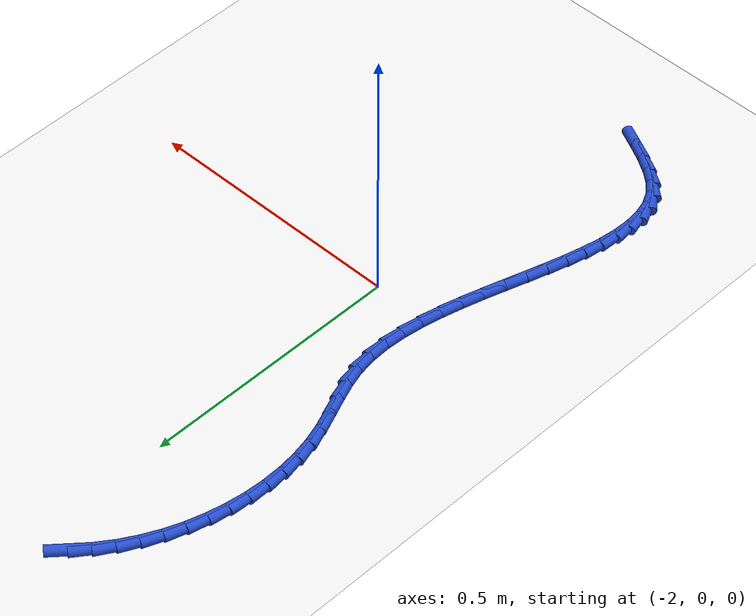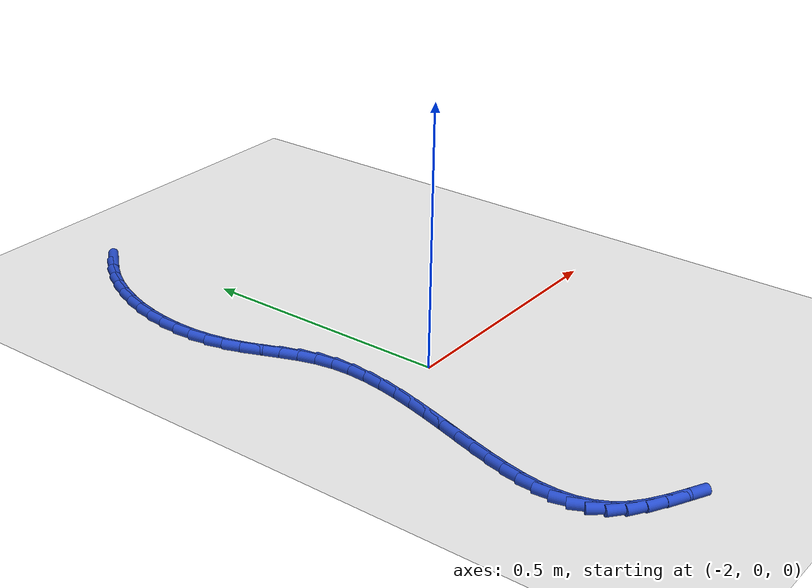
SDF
<sdf version="1.6">
 <world name="default">
  <model name="ground_plane">
   <static>1</static>
   <link name="link">
    <collision name="collision">
     <geometry><plane><normal>0 0 1</normal><size>100 100</size></plane></geometry>
     <surface><friction><ode><mu>100</mu><mu2>50</mu2></ode></friction></surface>
    </collision>
    <visual name="visual">
     <cast_shadows>0</cast_shadows>
     <geometry><plane><normal>0 0 1</normal><size>100 100</size></plane></geometry>
     <material>
      <script><uri>file://media/materials/scripts/gazebo.material</uri><name>Gazebo/WhiteGlow</name></script>
     </material>
    </visual>
   </link>
  </model>
  <model name="line">
   <link name="link_101">
    <pose>-2.060882034483153 0.7489533475358238 0.01 0 1.57 0.8401064688445521</pose>
    <collision name="collision">
     <geometry><cylinder><radius>0.01</radius><length>0.08</length></cylinder></geometry>
    </collision>
    <visual name="visual">
     <material>
      <script><name>Gazebo/Blue</name><uri>file://media/materials/scripts/gazebo.material</uri></script>
     </material>
     <geometry><cylinder><radius>0.01</radius><length>0.08</length></cylinder></geometry>
    </visual>
   </link>
   <link name="link_102">
    <pose>-2.085448786605733 0.7215400124167127 0.01 0 1.57 0.9346124691766111</pose>
    <collision name="collision">
     <geometry><cylinder><radius>0.01</radius><length>0.08</length></cylinder></geometry>
    </collision>
    <visual name="visual">
     <material>
      <script><name>Gazebo/Blue</name><uri>file://media/materials/scripts/gazebo.material</uri></script>
     </material>
     <geometry><cylinder><radius>0.01</radius><length>0.08</length></cylinder></geometry>
    </visual>
   </link>
   <link name="link_103">
    <pose>-2.1074805424237057 0.6917121069957796 0.01 0 1.57 1.0239100167349378</pose>
    <collision name="collision">
     <geometry><cylinder><radius>0.01</radius><length>0.08</length></cylinder></geometry>
    </collision>
    <visual name="visual">
     <material>
      <script><name>Gazebo/Blue</name><uri>file://media/materials/scripts/gazebo.material</uri></script>
     </material>
     <geometry><cylinder><radius>0.01</radius><length>0.08</length></cylinder></geometry>
    </visual>
   </link>
   <link name="link_104">
    <pose>-2.126908085387129 0.6598024324865919 0.01 0 1.57 1.108937853082907</pose>
    <collision name="collision">
     <geometry><cylinder><radius>0.01</radius><length>0.08</length></cylinder></geometry>
    </collision>
    <visual name="visual">
     <material>
      <script><name>Gazebo/Blue</name><uri>file://media/materials/scripts/gazebo.material</uri></script>
     </material>
     <geometry><cylinder><radius>0.01</radius><length>0.08</length></cylinder></geometry>
    </visual>
   </link>
   <link name="link_105">
    <pose>-2.1436621989460565 0.6261437901027175 0.01 0 1.57 1.1907436440343862</pose>
    <collision name="collision">
     <geometry><cylinder><radius>0.01</radius><length>0.08</length></cylinder></geometry>
    </collision>
    <visual name="visual">
     <material>
      <script><name>Gazebo/Blue</name><uri>file://media/materials/scripts/gazebo.material</uri></script>
     </material>
     <geometry><cylinder><radius>0.01</radius><length>0.08</length></cylinder></geometry>
    </visual>
   </link>
   <link name="link_106">
    <pose>-2.1576736665505463 0.5910689810577237 0.01 0 1.57 1.270428582061972</pose>
    <collision name="collision">
     <geometry><cylinder><radius>0.01</radius><length>0.08</length></cylinder></geometry>
    </collision>
    <visual name="visual">
     <material>
      <script><name>Gazebo/Blue</name><uri>file://media/materials/scripts/gazebo.material</uri></script>
     </material>
     <geometry><cylinder><radius>0.01</radius><length>0.08</length></cylinder></geometry>
    </visual>
   </link>
   <link name="link_107">
    <pose>-2.1688732716506536 0.5549108065651779 0.01 0 1.57 1.3491193345732564</pose>
    <collision name="collision">
     <geometry><cylinder><radius>0.01</radius><length>0.08</length></cylinder></geometry>
    </collision>
    <visual name="visual">
     <material>
      <script><name>Gazebo/Blue</name><uri>file://media/materials/scripts/gazebo.material</uri></script>
     </material>
     <geometry><cylinder><radius>0.01</radius><length>0.08</length></cylinder></geometry>
    </visual>
   </link>
   <link name="link_108">
    <pose>-2.177191797696436 0.5180020678386473 0.01 0 1.57 1.427957559290346</pose>
    <collision name="collision">
     <geometry><cylinder><radius>0.01</radius><length>0.08</length></cylinder></geometry>
    </collision>
    <visual name="visual">
     <material>
      <script><name>Gazebo/Blue</name><uri>file://media/materials/scripts/gazebo.material</uri></script>
     </material>
     <geometry><cylinder><radius>0.01</radius><length>0.08</length></cylinder></geometry>
    </visual>
   </link>
   <link name="link_109">
    <pose>-2.1825600281379485 0.48067556609170015 0.01 0 1.57 1.5080979027979537</pose>
    <collision name="collision">
     <geometry><cylinder><radius>0.01</radius><length>0.08</length></cylinder></geometry>
    </collision>
    <visual name="visual">
     <material>
      <script><name>Gazebo/Blue</name><uri>file://media/materials/scripts/gazebo.material</uri></script>
     </material>
     <geometry><cylinder><radius>0.01</radius><length>0.08</length></cylinder></geometry>
    </visual>
   </link>
   <link name="link_110">
    <pose>-2.184908746425249 0.4432641025379036 0.01 0 1.57 -1.5508867336588632</pose>
    <collision name="collision">
     <geometry><cylinder><radius>0.01</radius><length>0.08</length></cylinder></geometry>
    </collision>
    <visual name="visual">
     <material>
      <script><name>Gazebo/Blue</name><uri>file://media/materials/scripts/gazebo.material</uri></script>
     </material>
     <geometry><cylinder><radius>0.01</radius><length>0.08</length></cylinder></geometry>
    </visual>
   </link>
   <link name="link_111">
    <pose>-2.1841687360083912 0.4061004783908249 0.01 0 1.57 -1.4646457714623244</pose>
    <collision name="collision">
     <geometry><cylinder><radius>0.01</radius><length>0.08</length></cylinder></geometry>
    </collision>
    <visual name="visual">
     <material>
      <script><name>Gazebo/Blue</name><uri>file://media/materials/scripts/gazebo.material</uri></script>
     </material>
     <geometry><cylinder><radius>0.01</radius><length>0.08</length></cylinder></geometry>
    </visual>
   </link>
   <link name="link_112">
    <pose>-2.180270780337433 0.3695174948640311 0.01 0 1.57 -1.373637752157715</pose>
    <collision name="collision">
     <geometry><cylinder><radius>0.01</radius><length>0.08</length></cylinder></geometry>
    </collision>
    <visual name="visual">
     <material>
      <script><name>Gazebo/Blue</name><uri>file://media/materials/scripts/gazebo.material</uri></script>
     </material>
     <geometry><cylinder><radius>0.01</radius><length>0.08</length></cylinder></geometry>
    </visual>
   </link>
   <link name="link_113">
    <pose>-2.1731456628624306 0.33384795317109084 0.01 0 1.57 -1.2778956271705915</pose>
    <collision name="collision">
     <geometry><cylinder><radius>0.01</radius><length>0.08</length></cylinder></geometry>
    </collision>
    <visual name="visual">
     <material>
      <script><name>Gazebo/Blue</name><uri>file://media/materials/scripts/gazebo.material</uri></script>
     </material>
     <geometry><cylinder><radius>0.01</radius><length>0.08</length></cylinder></geometry>
    </visual>
   </link>
   <link name="link_114">
    <pose>-2.1627587866573217 0.299405800946533 0.01 0 1.57 -1.2031492354582862</pose>
    <collision name="collision">
     <geometry><cylinder><radius>0.01</radius><length>0.08</length></cylinder></geometry>
    </collision>
    <visual name="visual">
     <material>
      <script><name>Gazebo/Blue</name><uri>file://media/materials/scripts/gazebo.material</uri></script>
     </material>
     <geometry><cylinder><radius>0.01</radius><length>0.08</length></cylinder></geometry>
    </visual>
   </link>
   <link name="link_115">
    <pose>-2.149911422794083 0.2660497785869207 0.01 0 1.57 -1.177336893738993</pose>
    <collision name="collision">
     <geometry><cylinder><radius>0.01</radius><length>0.08</length></cylinder></geometry>
    </collision>
    <visual name="visual">
     <material>
      <script><name>Gazebo/Blue</name><uri>file://media/materials/scripts/gazebo.material</uri></script>
     </material>
     <geometry><cylinder><radius>0.01</radius><length>0.08</length></cylinder></geometry>
    </visual>
   </link>
   <link name="link_116">
    <pose>-2.1362633305998373 0.2331711004340271 0.01 0 1.57 -1.2024226208152087</pose>
    <collision name="collision">
     <geometry><cylinder><radius>0.01</radius><length>0.08</length></cylinder></geometry>
    </collision>
    <visual name="visual">
     <material>
      <script><name>Gazebo/Blue</name><uri>file://media/materials/scripts/gazebo.material</uri></script>
     </material>
     <geometry><cylinder><radius>0.01</radius><length>0.08</length></cylinder></geometry>
    </visual>
   </link>
   <link name="link_117">
    <pose>-2.1235134140882277 0.2001396629365162 0.01 0 1.57 -1.2791076641124994</pose>
    <collision name="collision">
     <geometry><cylinder><radius>0.01</radius><length>0.08</length></cylinder></geometry>
    </collision>
    <visual name="visual">
     <material>
      <script><name>Gazebo/Blue</name><uri>file://media/materials/scripts/gazebo.material</uri></script>
     </material>
     <geometry><cylinder><radius>0.01</radius><length>0.08</length></cylinder></geometry>
    </visual>
   </link>
   <link name="link_118">
    <pose>-2.113360577272903 0.16632536254305308 0.01 0 1.57 -1.4018801986129743</pose>
    <collision name="collision">
     <geometry><cylinder><radius>0.01</radius><length>0.08</length></cylinder></geometry>
    </collision>
    <visual name="visual">
     <material>
      <script><name>Gazebo/Blue</name><uri>file://media/materials/scripts/gazebo.material</uri></script>
     </material>
     <geometry><cylinder><radius>0.01</radius><length>0.08</length></cylinder></geometry>
    </visual>
   </link>
   <link name="link_119">
    <pose>-2.107362187566585 0.13115269458104403 0.01 0 1.57 -1.5255070291305557</pose>
    <collision name="collision">
     <geometry><cylinder><radius>0.01</radius><length>0.08</length></cylinder></geometry>
    </collision>
    <visual name="visual">
     <material>
      <script><name>Gazebo/Blue</name><uri>file://media/materials/scripts/gazebo.material</uri></script>
     </material>
     <geometry><cylinder><radius>0.01</radius><length>0.08</length></cylinder></geometry>
    </visual>
   </link>
   <link name="link_120">
    <pose>-2.105704479544537 0.09457507986461537 0.01 0 1.57 1.515211361605297</pose>
    <collision name="collision">
     <geometry><cylinder><radius>0.01</radius><length>0.08</length></cylinder></geometry>
    </collision>
    <visual name="visual">
     <material>
      <script><name>Gazebo/Blue</name><uri>file://media/materials/scripts/gazebo.material</uri></script>
     </material>
     <geometry><cylinder><radius>0.01</radius><length>0.08</length></cylinder></geometry>
    </visual>
   </link>
   <link name="link_121">
    <pose>-2.1078039865229905 0.056842857640547625 0.01 0 1.57 1.4353559988704196</pose>
    <collision name="collision">
     <geometry><cylinder><radius>0.01</radius><length>0.08</length></cylinder></geometry>
    </collision>
    <visual name="visual">
     <material>
      <script><name>Gazebo/Blue</name><uri>file://media/materials/scripts/gazebo.material</uri></script>
     </material>
     <geometry><cylinder><radius>0.01</radius><length>0.08</length></cylinder></geometry>
    </visual>
   </link>
   <link name="link_122">
    <pose>-2.1130687113936957 0.01820965783526803 0.01 0 1.57 1.37384543437967</pose>
    <collision name="collision">
     <geometry><cylinder><radius>0.01</radius><length>0.08</length></cylinder></geometry>
    </collision>
    <visual name="visual">
     <material>
      <script><name>Gazebo/Blue</name><uri>file://media/materials/scripts/gazebo.material</uri></script>
     </material>
     <geometry><cylinder><radius>0.01</radius><length>0.08</length></cylinder></geometry>
    </visual>
   </link>
   <link name="link_123">
    <pose>-2.120906657048403 -0.021070889624795978 0.01 0 1.57 1.3281770039443923</pose>
    <collision name="collision">
     <geometry><cylinder><radius>0.01</radius><length>0.08</length></cylinder></geometry>
    </collision>
    <visual name="visual">
     <material>
      <script><name>Gazebo/Blue</name><uri>file://media/materials/scripts/gazebo.material</uri></script>
     </material>
     <geometry><cylinder><radius>0.01</radius><length>0.08</length></cylinder></geometry>
    </visual>
   </link>
   <link name="link_124">
    <pose>-2.130725826378863 -0.06074515481321709 0.01 0 1.57 1.2963819608395453</pose>
    <collision name="collision">
     <geometry><cylinder><radius>0.01</radius><length>0.08</length></cylinder></geometry>
    </collision>
    <visual name="visual">
     <material>
      <script><name>Gazebo/Blue</name><uri>file://media/materials/scripts/gazebo.material</uri></script>
     </material>
     <geometry><cylinder><radius>0.01</radius><length>0.08</length></cylinder></geometry>
    </visual>
   </link>
   <link name="link_125">
    <pose>-2.141934222276826 -0.10055950780356894 0.01 0 1.57 1.2771368431752328</pose>
    <collision name="collision">
     <geometry><cylinder><radius>0.01</radius><length>0.08</length></cylinder></geometry>
    </collision>
    <visual name="visual">
     <material>
      <script><name>Gazebo/Blue</name><uri>file://media/materials/scripts/gazebo.material</uri></script>
     </material>
     <geometry><cylinder><radius>0.01</radius><length>0.08</length></cylinder></geometry>
    </visual>
   </link>
   <link name="link_126">
    <pose>-2.1539398476340406 -0.1402603186694221 0.01 0 1.57 1.2697864341884642</pose>
    <collision name="collision">
     <geometry><cylinder><radius>0.01</radius><length>0.08</length></cylinder></geometry>
    </collision>
    <visual name="visual">
     <material>
      <script><name>Gazebo/Blue</name><uri>file://media/materials/scripts/gazebo.material</uri></script>
     </material>
     <geometry><cylinder><radius>0.01</radius><length>0.08</length></cylinder></geometry>
    </visual>
   </link>
   <link name="link_127">
    <pose>-2.166150705342258 -0.1795939574843502 0.01 0 1.57 1.274364618847439</pose>
    <collision name="collision">
     <geometry><cylinder><radius>0.01</radius><length>0.08</length></cylinder></geometry>
    </collision>
    <visual name="visual">
     <material>
      <script><name>Gazebo/Blue</name><uri>file://media/materials/scripts/gazebo.material</uri></script>
     </material>
     <geometry><cylinder><radius>0.01</radius><length>0.08</length></cylinder></geometry>
    </visual>
   </link>
   <link name="link_128">
    <pose>-2.1779747982932283 -0.21830679432192604 0.01 0 1.57 1.2916573737617973</pose>
    <collision name="collision">
     <geometry><cylinder><radius>0.01</radius><length>0.08</length></cylinder></geometry>
    </collision>
    <visual name="visual">
     <material>
      <script><name>Gazebo/Blue</name><uri>file://media/materials/scripts/gazebo.material</uri></script>
     </material>
     <geometry><cylinder><radius>0.01</radius><length>0.08</length></cylinder></geometry>
    </visual>
   </link>
   <link name="link_129">
    <pose>-2.1888201293787017 -0.2561451992557221 0.01 0 1.57 1.3233326865828243</pose>
    <collision name="collision">
     <geometry><cylinder><radius>0.01</radius><length>0.08</length></cylinder></geometry>
    </collision>
    <visual name="visual">
     <material>
      <script><name>Gazebo/Blue</name><uri>file://media/materials/scripts/gazebo.material</uri></script>
     </material>
     <geometry><cylinder><radius>0.01</radius><length>0.08</length></cylinder></geometry>
    </visual>
   </link>
   <link name="link_130">
    <pose>-2.1980947014904286 -0.29285554235931116 0.01 0 1.57 1.372146767926391</pose>
    <collision name="collision">
     <geometry><cylinder><radius>0.01</radius><length>0.08</length></cylinder></geometry>
    </collision>
    <visual name="visual">
     <material>
      <script><name>Gazebo/Blue</name><uri>file://media/materials/scripts/gazebo.material</uri></script>
     </material>
     <geometry><cylinder><radius>0.01</radius><length>0.08</length></cylinder></geometry>
    </visual>
   </link>
   <link name="link_131">
    <pose>-2.205206517520159 -0.3281841937062657 0.01 0 1.57 1.4421947081273805</pose>
    <collision name="collision">
     <geometry><cylinder><radius>0.01</radius><length>0.08</length></cylinder></geometry>
    </collision>
    <visual name="visual">
     <material>
      <script><name>Gazebo/Blue</name><uri>file://media/materials/scripts/gazebo.material</uri></script>
     </material>
     <geometry><cylinder><radius>0.01</radius><length>0.08</length></cylinder></geometry>
    </visual>
   </link>
   <link name="link_132">
    <pose>-2.2095635803596436 -0.3618775233701595 0.01 0 1.57 1.5390405444087025</pose>
    <collision name="collision">
     <geometry><cylinder><radius>0.01</radius><length>0.08</length></cylinder></geometry>
    </collision>
    <visual name="visual">
     <material>
      <script><name>Gazebo/Blue</name><uri>file://media/materials/scripts/gazebo.material</uri></script>
     </material>
     <geometry><cylinder><radius>0.01</radius><length>0.08</length></cylinder></geometry>
    </visual>
   </link>
   <link name="link_133">
    <pose>-2.2105738929006304 -0.393681901424563 0.01 0 1.57 -1.4723877383908817</pose>
    <collision name="collision">
     <geometry><cylinder><radius>0.01</radius><length>0.08</length></cylinder></geometry>
    </collision>
    <visual name="visual">
     <material>
      <script><name>Gazebo/Blue</name><uri>file://media/materials/scripts/gazebo.material</uri></script>
     </material>
     <geometry><cylinder><radius>0.01</radius><length>0.08</length></cylinder></geometry>
    </visual>
   </link>
   <link name="link_134">
    <pose>-2.207645458034872 -0.42334369794305005 0.01 0 1.57 -1.3037555132114338</pose>
    <collision name="collision">
     <geometry><cylinder><radius>0.01</radius><length>0.08</length></cylinder></geometry>
    </collision>
    <visual name="visual">
     <material>
      <script><name>Gazebo/Blue</name><uri>file://media/materials/scripts/gazebo.material</uri></script>
     </material>
     <geometry><cylinder><radius>0.01</radius><length>0.08</length></cylinder></geometry>
    </visual>
   </link>
   <link name="link_135">
    <pose>-2.200186278654118 -0.45060928299919334 0.01 0 1.57 -1.098281968789438</pose>
    <collision name="collision">
     <geometry><cylinder><radius>0.01</radius><length>0.08</length></cylinder></geometry>
    </collision>
    <visual name="visual">
     <material>
      <script><name>Gazebo/Blue</name><uri>file://media/materials/scripts/gazebo.material</uri></script>
     </material>
     <geometry><cylinder><radius>0.01</radius><length>0.08</length></cylinder></geometry>
    </visual>
   </link>
   <link name="link_136">
    <pose>-2.187604357650118 -0.4752250266665653 0.01 0 1.57 -0.8722143818492166</pose>
    <collision name="collision">
     <geometry><cylinder><radius>0.01</radius><length>0.08</length></cylinder></geometry>
    </collision>
    <visual name="visual">
     <material>
      <script><name>Gazebo/Blue</name><uri>file://media/materials/scripts/gazebo.material</uri></script>
     </material>
     <geometry><cylinder><radius>0.01</radius><length>0.08</length></cylinder></geometry>
    </visual>
   </link>
   <link name="link_137">
    <pose>-2.169347951621477 -0.49696228052030567 0.01 0 1.57 -0.6812926123435044</pose>
    <collision name="collision">
     <geometry><cylinder><radius>0.01</radius><length>0.08</length></cylinder></geometry>
    </collision>
    <visual name="visual">
     <material>
      <script><name>Gazebo/Blue</name><uri>file://media/materials/scripts/gazebo.material</uri></script>
     </material>
     <geometry><cylinder><radius>0.01</radius><length>0.08</length></cylinder></geometry>
    </visual>
   </link>
   <link name="link_138">
    <pose>-2.1457179362457457 -0.5161215326181678 0.01 0 1.57 -0.5574696927414958</pose>
    <collision name="collision">
     <geometry><cylinder><radius>0.01</radius><length>0.08</length></cylinder></geometry>
    </collision>
    <visual name="visual">
     <material>
      <script><name>Gazebo/Blue</name><uri>file://media/materials/scripts/gazebo.material</uri></script>
     </material>
     <geometry><cylinder><radius>0.01</radius><length>0.08</length></cylinder></geometry>
    </visual>
   </link>
   <link name="link_139">
    <pose>-2.1178290113949116 -0.533508331345946 0.01 0 1.57 -0.4876032015838462</pose>
    <collision name="collision">
     <geometry><cylinder><radius>0.01</radius><length>0.08</length></cylinder></geometry>
    </collision>
    <visual name="visual">
     <material>
      <script><name>Gazebo/Blue</name><uri>file://media/materials/scripts/gazebo.material</uri></script>
     </material>
     <geometry><cylinder><radius>0.01</radius><length>0.08</length></cylinder></geometry>
    </visual>
   </link>
   <link name="link_140">
    <pose>-2.086828366395793 -0.5499483880863442 0.01 0 1.57 -0.45967041387596197</pose>
    <collision name="collision">
     <geometry><cylinder><radius>0.01</radius><length>0.08</length></cylinder></geometry>
    </collision>
    <visual name="visual">
     <material>
      <script><name>Gazebo/Blue</name><uri>file://media/materials/scripts/gazebo.material</uri></script>
     </material>
     <geometry><cylinder><radius>0.01</radius><length>0.08</length></cylinder></geometry>
    </visual>
   </link>
  </model>
 </world>
</sdf>
